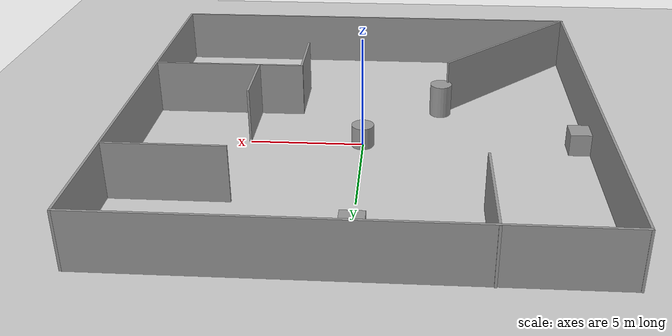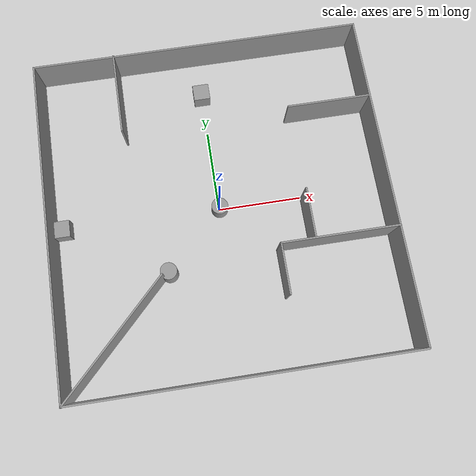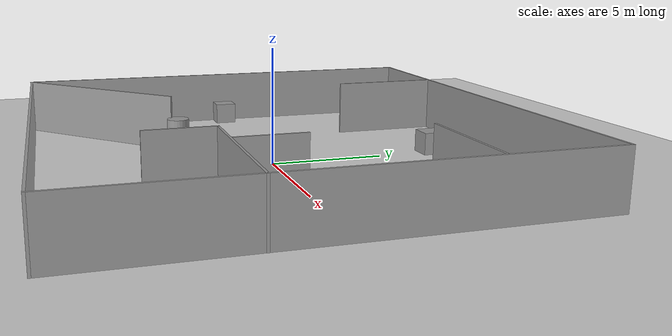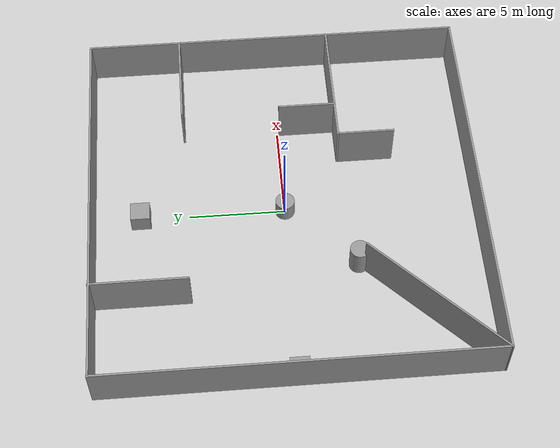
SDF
<sdf version="1.6">
 <world name="default">
  <light name="sun" type="directional">
   <pose>0 0 10 0 -0 0</pose>
   <diffuse>0.8 0.8 0.8 1</diffuse>
   <specular>0.2 0.2 0.2 1</specular>
   <attenuation>
    <range>1000</range>
    <constant>0.9</constant>
    <linear>0.01</linear>
    <quadratic>0.001</quadratic>
   </attenuation>
   <direction>-0.5 0.1 -0.9</direction>
  </light>
  <model name="ground_plane">
   <static>1</static>
   <link name="link">
    <collision name="collision">
     <geometry><plane><normal>0 0 1</normal><size>100 100</size></plane></geometry>
     <surface>
      <contact><collide_bitmask>65535</collide_bitmask></contact>
      <friction><ode><mu>100</mu><mu2>50</mu2></ode></friction>
     </surface>
    </collision>
    <visual name="visual">
     <cast_shadows>0</cast_shadows>
     <geometry><plane><normal>0 0 1</normal><size>100 100</size></plane></geometry>
     <material>
      <script><uri>file://media/materials/scripts/gazebo.material</uri><name>Gazebo/Grey</name></script>
     </material>
    </visual>
   </link>
  </model>
  <gravity>0 0 -9.8</gravity>
  <magnetic_field>6e-06 2.3e-05 -4.2e-05</magnetic_field>
  <atmosphere type="adiabatic"/>
  <physics name="default_physics" default="0" type="ode">
   <max_step_size>0.001</max_step_size>
   <real_time_factor>1</real_time_factor>
   <real_time_update_rate>1000</real_time_update_rate>
  </physics>
  <scene><ambient>0.4 0.4 0.4 1</ambient><background>0.7 0.7 0.7 1</background><shadows>1</shadows></scene>
  <audio><device>default</device></audio>
  <spherical_coordinates>
   <surface_model>EARTH_WGS84</surface_model>
   <latitude_deg>0</latitude_deg>
   <longitude_deg>0</longitude_deg>
   <elevation>0</elevation>
   <heading_deg>0</heading_deg>
  </spherical_coordinates>
  <model name="20_20">
   <pose>-0.026312 0.001688 0 0 -0 0</pose>
   <link name="Wall_1">
    <collision name="Wall_1_Collision">
     <geometry><box><size>20 0.1 2.5</size></box></geometry>
     <pose>0 0 1.25 0 -0 0</pose>
    </collision>
    <visual name="Wall_1_Visual">
     <pose>0 0 1.25 0 -0 0</pose>
     <geometry><box><size>20 0.1 2.5</size></box></geometry>
     <material>
      <script><uri>file://media/materials/scripts/gazebo.material</uri><name>Gazebo/Grey</name></script>
      <ambient>1 1 1 1</ambient>
     </material>
     <meta><layer>0</layer></meta>
    </visual>
    <pose>0.022312 9.93231 0 0 -0 0</pose>
   </link>
   <link name="Wall_10">
    <collision name="Wall_10_Collision">
     <geometry><box><size>7 0.1 2.5</size></box></geometry>
     <pose>0 0 1.25 0 -0 0</pose>
    </collision>
    <visual name="Wall_10_Visual">
     <pose>0 0 1.25 0 -0 0</pose>
     <geometry><box><size>7 0.1 2.5</size></box></geometry>
     <material>
      <script><uri>file://media/materials/scripts/gazebo.material</uri><name>Gazebo/Grey</name></script>
      <ambient>1 1 1 1</ambient>
     </material>
     <meta><layer>0</layer></meta>
    </visual>
    <pose>6.53331 -3.05269 0 0 -0 3.14159</pose>
   </link>
   <link name="Wall_12">
    <collision name="Wall_12_Collision">
     <geometry><box><size>3 0.1 2.5</size></box></geometry>
     <pose>0 0 1.25 0 -0 0</pose>
    </collision>
    <visual name="Wall_12_Visual">
     <pose>0 0 1.25 0 -0 0</pose>
     <geometry><box><size>3 0.1 2.5</size></box></geometry>
     <material>
      <script><uri>file://media/materials/scripts/gazebo.material</uri><name>Gazebo/Grey</name></script>
      <ambient>1 1 1 1</ambient>
     </material>
     <meta><layer>0</layer></meta>
    </visual>
    <pose>3.08331 -4.50269 0 0 -0 -1.5708</pose>
   </link>
   <link name="Wall_14">
    <collision name="Wall_14_Collision">
     <geometry><box><size>3 0.1 2.5</size></box></geometry>
     <pose>0 0 1.25 0 -0 0</pose>
    </collision>
    <visual name="Wall_14_Visual">
     <pose>0 0 1.25 0 -0 0</pose>
     <geometry><box><size>3 0.1 2.5</size></box></geometry>
     <material>
      <script><uri>file://media/materials/scripts/gazebo.material</uri><name>Gazebo/Grey</name></script>
      <ambient>1 1 1 1</ambient>
     </material>
     <meta><layer>0</layer></meta>
    </visual>
    <pose>5.08831 -1.56269 0 0 -0 1.5708</pose>
   </link>
   <link name="Wall_16">
    <collision name="Wall_16_Collision">
     <geometry><box><size>8.8 0.1 2.5</size></box></geometry>
     <pose>0 0 1.25 0 -0 0</pose>
    </collision>
    <visual name="Wall_16_Visual">
     <pose>0 0 1.25 0 -0 0</pose>
     <geometry><box><size>8.8 0.1 2.5</size></box></geometry>
     <material>
      <script><uri>file://media/materials/scripts/gazebo.material</uri><name>Gazebo/Grey</name></script>
      <ambient>1 1 1 1</ambient>
     </material>
     <meta><layer>0</layer></meta>
    </visual>
    <pose>-6.88669 -6.87669 0 0 -0 0.785398</pose>
   </link>
   <link name="Wall_2">
    <collision name="Wall_2_Collision">
     <geometry><box><size>20 0.1 2.5</size></box></geometry>
     <pose>0 0 1.25 0 -0 0</pose>
    </collision>
    <visual name="Wall_2_Visual">
     <pose>0 0 1.25 0 -0 0</pose>
     <geometry><box><size>20 0.1 2.5</size></box></geometry>
     <material>
      <script><uri>file://media/materials/scripts/gazebo.material</uri><name>Gazebo/Grey</name></script>
      <ambient>1 1 1 1</ambient>
     </material>
     <meta><layer>0</layer></meta>
    </visual>
    <pose>9.97231 -0.017688 0 0 -0 -1.5708</pose>
   </link>
   <link name="Wall_3">
    <collision name="Wall_3_Collision">
     <geometry><box><size>20.0352 0.1 2.5</size></box></geometry>
     <pose>0 0 1.25 0 -0 0</pose>
    </collision>
    <visual name="Wall_3_Visual">
     <pose>0 0 1.25 0 -0 0</pose>
     <geometry><box><size>20.0352 0.1 2.5</size></box></geometry>
     <material>
      <script><uri>file://media/materials/scripts/gazebo.material</uri><name>Gazebo/Grey</name></script>
      <ambient>1 1 1 1</ambient>
     </material>
     <meta><layer>0</layer></meta>
    </visual>
    <pose>0.004812 -9.96019 0 0 -0 3.14084</pose>
   </link>
   <link name="Wall_4">
    <collision name="Wall_4_Collision">
     <geometry><box><size>20 0.1 2.5</size></box></geometry>
     <pose>0 0 1.25 0 -0 0</pose>
    </collision>
    <visual name="Wall_4_Visual">
     <pose>0 0 1.25 0 -0 0</pose>
     <geometry><box><size>20 0.1 2.5</size></box></geometry>
     <material>
      <script><uri>file://media/materials/scripts/gazebo.material</uri><name>Gazebo/Grey</name></script>
      <ambient>1 1 1 1</ambient>
     </material>
     <meta><layer>0</layer></meta>
    </visual>
    <pose>-9.96278 -0.002777 0 0 -0 1.57081</pose>
   </link>
   <link name="Wall_6">
    <collision name="Wall_6_Collision">
     <geometry><box><size>5 0.1 2.5</size></box></geometry>
     <pose>0 0 1.25 0 -0 0</pose>
    </collision>
    <visual name="Wall_6_Visual">
     <pose>0 0 1.25 0 -0 0</pose>
     <geometry><box><size>5 0.1 2.5</size></box></geometry>
     <material>
      <script><uri>file://media/materials/scripts/gazebo.material</uri><name>Gazebo/Grey</name></script>
      <ambient>1 1 1 1</ambient>
     </material>
     <meta><layer>0</layer></meta>
    </visual>
    <pose>-5.06569 7.52331 0 0 -0 -1.5708</pose>
   </link>
   <link name="Wall_8">
    <collision name="Wall_8_Collision">
     <geometry><box><size>5 0.1 2.5</size></box></geometry>
     <pose>0 0 1.25 0 -0 0</pose>
    </collision>
    <visual name="Wall_8_Visual">
     <pose>0 0 1.25 0 -0 0</pose>
     <geometry><box><size>5 0.1 2.5</size></box></geometry>
     <material>
      <script><uri>file://media/materials/scripts/gazebo.material</uri><name>Gazebo/Grey</name></script>
      <ambient>1 1 1 1</ambient>
     </material>
     <meta><layer>0</layer></meta>
    </visual>
    <pose>7.45231 5.07831 0 0 -0 3.14159</pose>
   </link>
   <static>1</static>
  </model>
  <model name="20*20_0">
   <link name="link_4">
    <inertial>
     <mass>1</mass>
     <inertia>
      <ixx>0.166667</ixx>
      <ixy>0</ixy>
      <ixz>0</ixz>
      <iyy>0.166667</iyy>
      <iyz>0</iyz>
      <izz>0.166667</izz>
     </inertia>
    </inertial>
    <pose>9.40781 7.42282 -0 0 0 -3e-06</pose>
    <visual name="visual">
     <geometry><box><size>1 1 1</size></box></geometry>
     <material>
      <lighting>1</lighting>
      <script><uri>file://media/materials/scripts/gazebo.material</uri><name>Gazebo/Grey</name></script>
     </material>
    </visual>
    <collision name="collision">
     <geometry><box><size>1 1 1</size></box></geometry>
     <surface>
      <friction>
       <ode><mu>1</mu><mu2>1</mu2><fdir1>0 0 0</fdir1><slip1>0</slip1><slip2>0</slip2></ode>
       <torsional>
        <coefficient>1</coefficient>
        <patch_radius>0</patch_radius>
        <surface_radius>0</surface_radius>
        <use_patch_radius>1</use_patch_radius>
        <ode><slip>0</slip></ode>
       </torsional>
      </friction>
      <bounce><restitution_coefficient>0</restitution_coefficient><threshold>1e+06</threshold></bounce>
      <contact>
       <collide_without_contact>0</collide_without_contact>
       <collide_without_contact_bitmask>1</collide_without_contact_bitmask>
       <collide_bitmask>1</collide_bitmask>
       <ode>
        <soft_cfm>0</soft_cfm>
        <soft_erp>0.2</soft_erp>
        <kp>1e+13</kp>
        <kd>1</kd>
        <max_vel>0.01</max_vel>
        <min_depth>0</min_depth>
       </ode>
       <bullet>
        <split_impulse>1</split_impulse>
        <split_impulse_penetration_threshold>-0.01</split_impulse_penetration_threshold>
        <soft_cfm>0</soft_cfm>
        <soft_erp>0.2</soft_erp>
        <kp>1e+13</kp>
        <kd>1</kd>
       </bullet>
      </contact>
     </surface>
    </collision>
   </link>
   <link name="link_5">
    <inertial>
     <mass>1</mass>
     <inertia><ixx>0.145833</ixx><ixy>0</ixy><ixz>0</ixz><iyy>0.145833</iyy><iyz>0</iyz><izz>0.125</izz></inertia>
    </inertial>
    <pose>5.93516 -3.60502 -0 0 -0 -3e-06</pose>
    <visual name="visual">
     <geometry><cylinder><radius>0.5</radius><length>2</length></cylinder></geometry>
     <material>
      <lighting>1</lighting>
      <script><uri>file://media/materials/scripts/gazebo.material</uri><name>Gazebo/Grey</name></script>
      <shader type="vertex"><normal_map>__default__</normal_map></shader>
      <ambient>0.3 0.3 0.3 1</ambient>
      <diffuse>0.7 0.7 0.7 1</diffuse>
      <specular>0.01 0.01 0.01 1</specular>
      <emissive>0 0 0 1</emissive>
     </material>
    </visual>
    <collision name="collision">
     <geometry><cylinder><radius>0.5</radius><length>2</length></cylinder></geometry>
     <surface>
      <friction>
       <ode><mu>1</mu><mu2>1</mu2><fdir1>0 0 0</fdir1><slip1>0</slip1><slip2>0</slip2></ode>
       <torsional>
        <coefficient>1</coefficient>
        <patch_radius>0</patch_radius>
        <surface_radius>0</surface_radius>
        <use_patch_radius>1</use_patch_radius>
        <ode><slip>0</slip></ode>
       </torsional>
      </friction>
      <bounce><restitution_coefficient>0</restitution_coefficient><threshold>1e+06</threshold></bounce>
      <contact>
       <collide_without_contact>0</collide_without_contact>
       <collide_without_contact_bitmask>1</collide_without_contact_bitmask>
       <collide_bitmask>1</collide_bitmask>
       <ode>
        <soft_cfm>0</soft_cfm>
        <soft_erp>0.2</soft_erp>
        <kp>1e+13</kp>
        <kd>1</kd>
        <max_vel>0.01</max_vel>
        <min_depth>0</min_depth>
       </ode>
       <bullet>
        <split_impulse>1</split_impulse>
        <split_impulse_penetration_threshold>-0.01</split_impulse_penetration_threshold>
        <soft_cfm>0</soft_cfm>
        <soft_erp>0.2</soft_erp>
        <kp>1e+13</kp>
        <kd>1</kd>
       </bullet>
      </contact>
     </surface>
    </collision>
   </link>
   <link name="link_6">
    <inertial>
     <mass>1</mass>
     <inertia><ixx>0.145833</ixx><ixy>0</ixy><ixz>0</ixz><iyy>0.145833</iyy><iyz>0</iyz><izz>0.125</izz></inertia>
    </inertial>
    <pose>9.44865 -0.100039 -0 0 0 -3e-06</pose>
    <visual name="visual">
     <geometry><cylinder><radius>0.5</radius><length>1</length></cylinder></geometry>
     <material>
      <lighting>1</lighting>
      <script><uri>file://media/materials/scripts/gazebo.material</uri><name>Gazebo/Grey</name></script>
     </material>
    </visual>
    <collision name="collision">
     <geometry><cylinder><radius>0.5</radius><length>1</length></cylinder></geometry>
     <surface>
      <friction>
       <ode><mu>1</mu><mu2>1</mu2><fdir1>0 0 0</fdir1><slip1>0</slip1><slip2>0</slip2></ode>
       <torsional>
        <coefficient>1</coefficient>
        <patch_radius>0</patch_radius>
        <surface_radius>0</surface_radius>
        <use_patch_radius>1</use_patch_radius>
        <ode><slip>0</slip></ode>
       </torsional>
      </friction>
      <bounce><restitution_coefficient>0</restitution_coefficient><threshold>1e+06</threshold></bounce>
      <contact>
       <collide_without_contact>0</collide_without_contact>
       <collide_without_contact_bitmask>1</collide_without_contact_bitmask>
       <collide_bitmask>1</collide_bitmask>
       <ode>
        <soft_cfm>0</soft_cfm>
        <soft_erp>0.2</soft_erp>
        <kp>1e+13</kp>
        <kd>1</kd>
        <max_vel>0.01</max_vel>
        <min_depth>0</min_depth>
       </ode>
       <bullet>
        <split_impulse>1</split_impulse>
        <split_impulse_penetration_threshold>-0.01</split_impulse_penetration_threshold>
        <soft_cfm>0</soft_cfm>
        <soft_erp>0.2</soft_erp>
        <kp>1e+13</kp>
        <kd>1</kd>
       </bullet>
      </contact>
     </surface>
    </collision>
   </link>
   <link name="link_7">
    <inertial>
     <mass>1</mass>
     <inertia>
      <ixx>0.166667</ixx>
      <ixy>0</ixy>
      <ixz>0</ixz>
      <iyy>0.166667</iyy>
      <iyz>0</iyz>
      <izz>0.166667</izz>
     </inertia>
    </inertial>
    <pose>-0.070732 -0.103253 0 0 0 -3e-06</pose>
    <visual name="visual">
     <geometry><box><size>1 1 1</size></box></geometry>
     <material>
      <lighting>1</lighting>
      <script><uri>file://media/materials/scripts/gazebo.material</uri><name>Gazebo/Grey</name></script>
     </material>
    </visual>
    <collision name="collision">
     <geometry><box><size>1 1 1</size></box></geometry>
     <surface>
      <friction>
       <ode><mu>1</mu><mu2>1</mu2><fdir1>0 0 0</fdir1><slip1>0</slip1><slip2>0</slip2></ode>
       <torsional>
        <coefficient>1</coefficient>
        <patch_radius>0</patch_radius>
        <surface_radius>0</surface_radius>
        <use_patch_radius>1</use_patch_radius>
        <ode><slip>0</slip></ode>
       </torsional>
      </friction>
      <bounce><restitution_coefficient>0</restitution_coefficient><threshold>1e+06</threshold></bounce>
      <contact>
       <collide_without_contact>0</collide_without_contact>
       <collide_without_contact_bitmask>1</collide_without_contact_bitmask>
       <collide_bitmask>1</collide_bitmask>
       <ode>
        <soft_cfm>0</soft_cfm>
        <soft_erp>0.2</soft_erp>
        <kp>1e+13</kp>
        <kd>1</kd>
        <max_vel>0.01</max_vel>
        <min_depth>0</min_depth>
       </ode>
       <bullet>
        <split_impulse>1</split_impulse>
        <split_impulse_penetration_threshold>-0.01</split_impulse_penetration_threshold>
        <soft_cfm>0</soft_cfm>
        <soft_erp>0.2</soft_erp>
        <kp>1e+13</kp>
        <kd>1</kd>
       </bullet>
      </contact>
     </surface>
    </collision>
   </link>
   <static>1</static>
   <pose>-9.43908 0.083678 0.5 0 -0 3e-06</pose>
  </model>
 </world>
</sdf>
